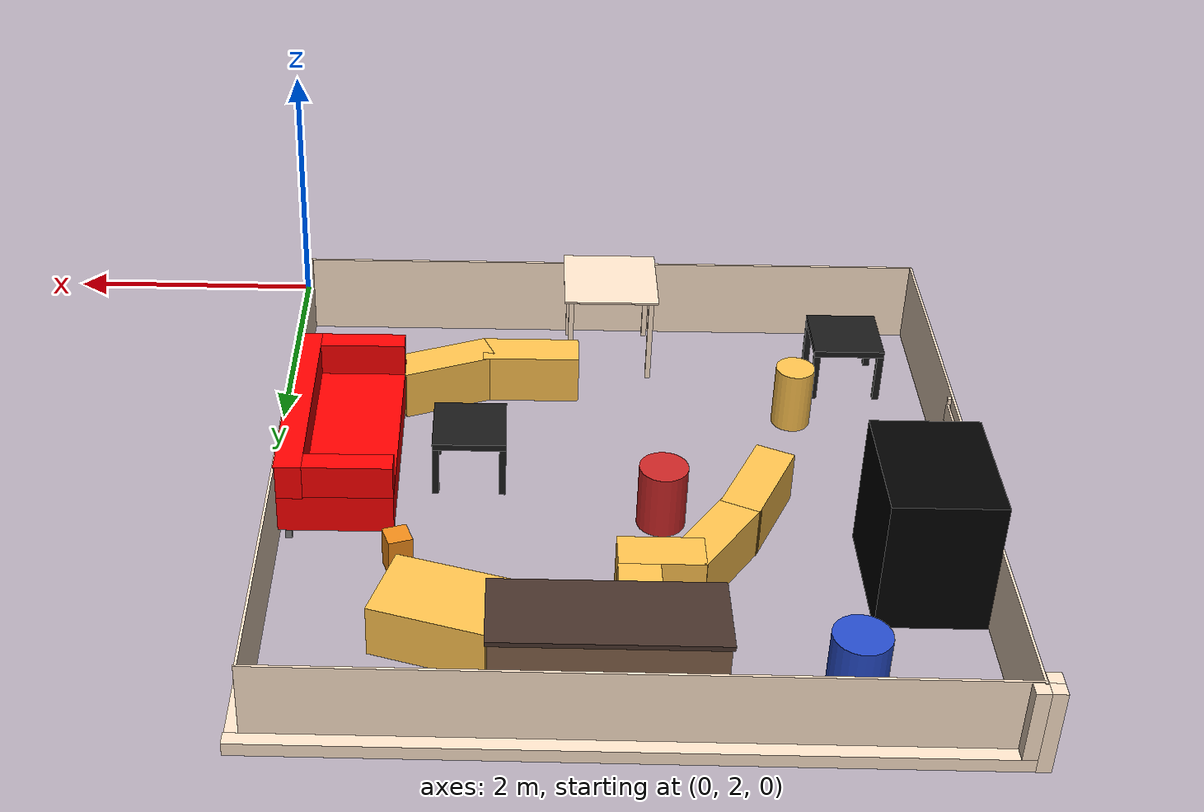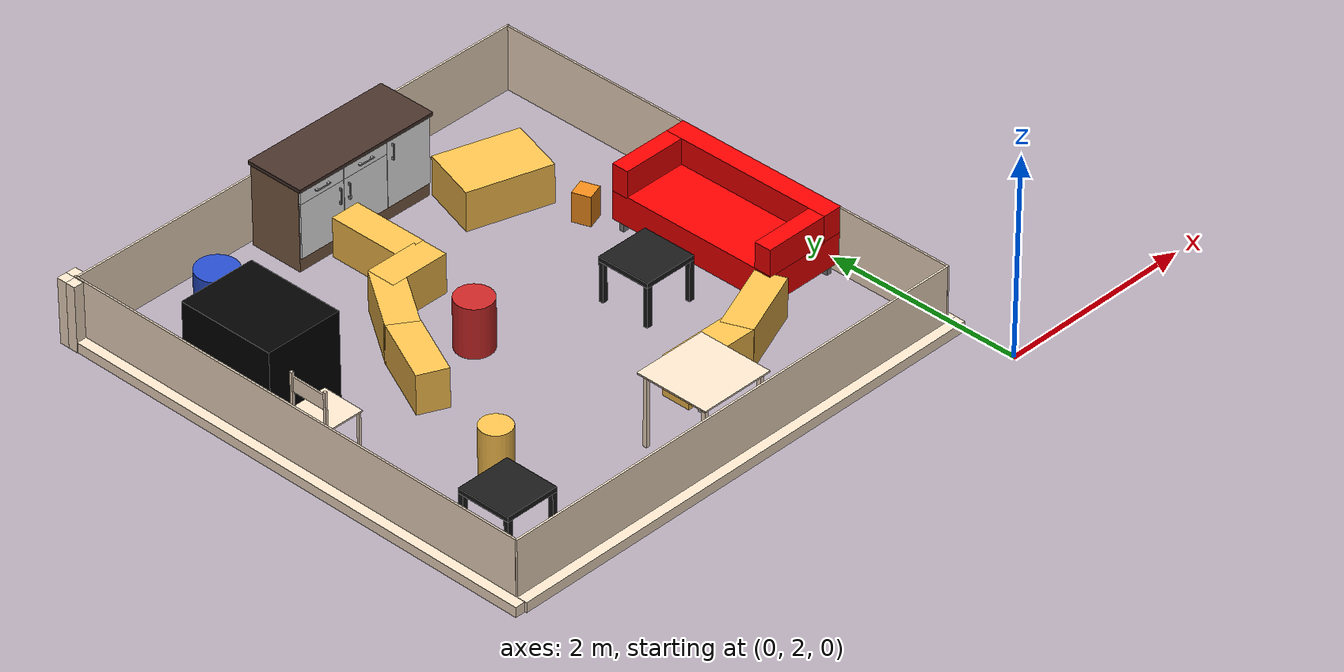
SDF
<sdf version="1.6">
 <model name="amr_arena">
  <link name="dinner-table::1">
   <collision name="dinner-table::1"><geometry><box><size>0.75 0.75 0.015</size></box></geometry></collision>
   <visual name="dinner-table::1">
    <geometry><box><size>0.75 0.75 0.015</size></box></geometry>
    <material><ambient>1 0.9 0.8 1</ambient></material>
   </visual>
   <pose>-2.6 3.02 0.7275 0 -0 1.5708</pose>
  </link>
  <link name="dinner-table::2">
   <collision name="dinner-table::2"><geometry><box><size>0.04 0.04 0.72</size></box></geometry></collision>
   <visual name="dinner-table::2">
    <geometry><box><size>0.04 0.04 0.72</size></box></geometry>
    <material><ambient>1 0.9 0.8 1</ambient></material>
   </visual>
   <pose>-2.28 2.7 0.36 0 -0 1.5708</pose>
  </link>
  <link name="dinner-table::3">
   <collision name="dinner-table::3"><geometry><box><size>0.04 0.04 0.72</size></box></geometry></collision>
   <visual name="dinner-table::3">
    <geometry><box><size>0.04 0.04 0.72</size></box></geometry>
    <material><ambient>1 0.9 0.8 1</ambient></material>
   </visual>
   <pose>-2.28 3.34 0.36 0 -0 1.5708</pose>
  </link>
  <link name="dinner-table::4">
   <collision name="dinner-table::4"><geometry><box><size>0.04 0.04 0.72</size></box></geometry></collision>
   <visual name="dinner-table::4">
    <geometry><box><size>0.04 0.04 0.72</size></box></geometry>
    <material><ambient>1 0.9 0.8 1</ambient></material>
   </visual>
   <pose>-2.92 2.7 0.36 0 -0 1.5708</pose>
  </link>
  <link name="dinner-table::5">
   <collision name="dinner-table::5"><geometry><box><size>0.04 0.04 0.72</size></box></geometry></collision>
   <visual name="dinner-table::5">
    <geometry><box><size>0.04 0.04 0.72</size></box></geometry>
    <material><ambient>1 0.9 0.8 1</ambient></material>
   </visual>
   <pose>-2.92 3.34 0.36 0 -0 1.5708</pose>
  </link>
  <link name="dinner-table::on_top_of"><pose>-2.6 3.02 0 0 -0 1.5708</pose></link>
  <link name="kitchen-counter::1">
   <collision name="kitchen-counter::1"><geometry><box><size>0.555 1.506 0.82</size></box></geometry></collision>
   <visual name="kitchen-counter::1">
    <geometry><box><size>0.555 1.506 0.82</size></box></geometry>
    <material><ambient>0.509 0.38 0.28 1</ambient></material>
   </visual>
   <pose>-2.434 7.3 0.41 0 0 -1.5708</pose>
  </link>
  <link name="kitchen-counter::2">
   <collision name="kitchen-counter::2"><geometry><box><size>0.608 1.54 0.035</size></box></geometry></collision>
   <visual name="kitchen-counter::2">
    <geometry><box><size>0.608 1.54 0.035</size></box></geometry>
    <material><ambient>0.28 0.2 0.17 1</ambient></material>
   </visual>
   <pose>-2.434 7.2865 0.8375 0 0 -1.5708</pose>
  </link>
  <link name="kitchen-counter::3">
   <collision name="kitchen-counter::3">
    <geometry><box><size>0.015 0.495 0.682</size></box></geometry>
   </collision>
   <visual name="kitchen-counter::3">
    <geometry><box><size>0.015 0.495 0.682</size></box></geometry>
    <material><ambient>1 1 1 1</ambient></material>
   </visual>
   <pose>-1.9315 7.015 0.476 0 0 -1.5708</pose>
  </link>
  <link name="kitchen-counter::4">
   <collision name="kitchen-counter::4"><geometry><box><size>0.02 0.01 0.025</size></box></geometry></collision>
   <visual name="kitchen-counter::4">
    <geometry><box><size>0.02 0.01 0.025</size></box></geometry>
    <material><ambient>0.75 0.75 0.75 1</ambient></material>
   </visual>
   <pose>-2.124 6.9975 0.7545 0 0 -1.5708</pose>
  </link>
  <link name="kitchen-counter::5">
   <collision name="kitchen-counter::5"><geometry><box><size>0.02 0.01 0.025</size></box></geometry></collision>
   <visual name="kitchen-counter::5">
    <geometry><box><size>0.02 0.01 0.025</size></box></geometry>
    <material><ambient>0.75 0.75 0.75 1</ambient></material>
   </visual>
   <pose>-2.124 6.9975 0.6175 0 0 -1.5708</pose>
  </link>
  <link name="kitchen-counter::6">
   <collision name="kitchen-counter::6"><geometry><box><size>0.008 0.01 0.162</size></box></geometry></collision>
   <visual name="kitchen-counter::6">
    <geometry><box><size>0.008 0.01 0.162</size></box></geometry>
    <material><ambient>0.75 0.75 0.75 1</ambient></material>
   </visual>
   <pose>-2.124 6.9835 0.686 0 0 -1.5708</pose>
  </link>
  <link name="kitchen-counter::7">
   <collision name="kitchen-counter::7">
    <geometry><box><size>0.015 0.494 0.545</size></box></geometry>
   </collision>
   <visual name="kitchen-counter::7">
    <geometry><box><size>0.015 0.494 0.545</size></box></geometry>
    <material><ambient>1 1 1 1</ambient></material>
   </visual>
   <pose>-2.431 7.015 0.4075 0 0 -1.5708</pose>
  </link>
  <link name="kitchen-counter::8">
   <collision name="kitchen-counter::8"><geometry><box><size>0.02 0.01 0.025</size></box></geometry></collision>
   <visual name="kitchen-counter::8">
    <geometry><box><size>0.02 0.01 0.025</size></box></geometry>
    <material><ambient>0.75 0.75 0.75 1</ambient></material>
   </visual>
   <pose>-2.628 6.9975 0.6175 0 0 -1.5708</pose>
  </link>
  <link name="kitchen-counter::9">
   <collision name="kitchen-counter::9"><geometry><box><size>0.02 0.01 0.025</size></box></geometry></collision>
   <visual name="kitchen-counter::9">
    <geometry><box><size>0.02 0.01 0.025</size></box></geometry>
    <material><ambient>0.75 0.75 0.75 1</ambient></material>
   </visual>
   <pose>-2.628 6.9975 0.4805 0 0 -1.5708</pose>
  </link>
  <link name="kitchen-counter::10">
   <collision name="kitchen-counter::10">
    <geometry><box><size>0.008 0.01 0.162</size></box></geometry>
   </collision>
   <visual name="kitchen-counter::10">
    <geometry><box><size>0.008 0.01 0.162</size></box></geometry>
    <material><ambient>0.75 0.75 0.75 1</ambient></material>
   </visual>
   <pose>-2.628 6.9835 0.549 0 0 -1.5708</pose>
  </link>
  <link name="kitchen-counter::11">
   <collision name="kitchen-counter::11">
    <geometry><box><size>0.015 0.494 0.134</size></box></geometry>
   </collision>
   <visual name="kitchen-counter::11">
    <geometry><box><size>0.015 0.494 0.134</size></box></geometry>
    <material><ambient>1 1 1 1</ambient></material>
   </visual>
   <pose>-2.431 7.015 0.75 0 0 -1.5708</pose>
  </link>
  <link name="kitchen-counter::12">
   <collision name="kitchen-counter::12"><geometry><box><size>0.02 0.025 0.01</size></box></geometry></collision>
   <visual name="kitchen-counter::12">
    <geometry><box><size>0.02 0.025 0.01</size></box></geometry>
    <material><ambient>0.75 0.75 0.75 1</ambient></material>
   </visual>
   <pose>-2.3625 6.9975 0.749 0 0 -1.5708</pose>
  </link>
  <link name="kitchen-counter::13">
   <collision name="kitchen-counter::13"><geometry><box><size>0.02 0.025 0.01</size></box></geometry></collision>
   <visual name="kitchen-counter::13">
    <geometry><box><size>0.02 0.025 0.01</size></box></geometry>
    <material><ambient>0.75 0.75 0.75 1</ambient></material>
   </visual>
   <pose>-2.4995 6.9975 0.749 0 0 -1.5708</pose>
  </link>
  <link name="kitchen-counter::14">
   <collision name="kitchen-counter::14">
    <geometry><box><size>0.008 0.162 0.01</size></box></geometry>
   </collision>
   <visual name="kitchen-counter::14">
    <geometry><box><size>0.008 0.162 0.01</size></box></geometry>
    <material><ambient>0.75 0.75 0.75 1</ambient></material>
   </visual>
   <pose>-2.431 6.9835 0.749 0 0 -1.5708</pose>
  </link>
  <link name="kitchen-counter::15">
   <collision name="kitchen-counter::15">
    <geometry><box><size>0.015 0.494 0.545</size></box></geometry>
   </collision>
   <visual name="kitchen-counter::15">
    <geometry><box><size>0.015 0.494 0.545</size></box></geometry>
    <material><ambient>1 1 1 1</ambient></material>
   </visual>
   <pose>-2.93 7.015 0.4075 0 0 -1.5708</pose>
  </link>
  <link name="kitchen-counter::16">
   <collision name="kitchen-counter::16"><geometry><box><size>0.02 0.01 0.025</size></box></geometry></collision>
   <visual name="kitchen-counter::16">
    <geometry><box><size>0.02 0.01 0.025</size></box></geometry>
    <material><ambient>0.75 0.75 0.75 1</ambient></material>
   </visual>
   <pose>-2.733 6.9975 0.6175 0 0 -1.5708</pose>
  </link>
  <link name="kitchen-counter::17">
   <collision name="kitchen-counter::17"><geometry><box><size>0.02 0.01 0.025</size></box></geometry></collision>
   <visual name="kitchen-counter::17">
    <geometry><box><size>0.02 0.01 0.025</size></box></geometry>
    <material><ambient>0.75 0.75 0.75 1</ambient></material>
   </visual>
   <pose>-2.733 6.9975 0.4805 0 0 -1.5708</pose>
  </link>
  <link name="kitchen-counter::18">
   <collision name="kitchen-counter::18">
    <geometry><box><size>0.008 0.01 0.162</size></box></geometry>
   </collision>
   <visual name="kitchen-counter::18">
    <geometry><box><size>0.008 0.01 0.162</size></box></geometry>
    <material><ambient>0.75 0.75 0.75 1</ambient></material>
   </visual>
   <pose>-2.733 6.9835 0.549 0 0 -1.5708</pose>
  </link>
  <link name="kitchen-counter::19">
   <collision name="kitchen-counter::19">
    <geometry><box><size>0.015 0.494 0.134</size></box></geometry>
   </collision>
   <visual name="kitchen-counter::19">
    <geometry><box><size>0.015 0.494 0.134</size></box></geometry>
    <material><ambient>1 1 1 1</ambient></material>
   </visual>
   <pose>-2.93 7.015 0.75 0 0 -1.5708</pose>
  </link>
  <link name="kitchen-counter::20">
   <collision name="kitchen-counter::20"><geometry><box><size>0.02 0.025 0.01</size></box></geometry></collision>
   <visual name="kitchen-counter::20">
    <geometry><box><size>0.02 0.025 0.01</size></box></geometry>
    <material><ambient>0.75 0.75 0.75 1</ambient></material>
   </visual>
   <pose>-2.8615 6.9975 0.749 0 0 -1.5708</pose>
  </link>
  <link name="kitchen-counter::21">
   <collision name="kitchen-counter::21"><geometry><box><size>0.02 0.025 0.01</size></box></geometry></collision>
   <visual name="kitchen-counter::21">
    <geometry><box><size>0.02 0.025 0.01</size></box></geometry>
    <material><ambient>0.75 0.75 0.75 1</ambient></material>
   </visual>
   <pose>-2.9985 6.9975 0.749 0 0 -1.5708</pose>
  </link>
  <link name="kitchen-counter::22">
   <collision name="kitchen-counter::22">
    <geometry><box><size>0.008 0.162 0.01</size></box></geometry>
   </collision>
   <visual name="kitchen-counter::22">
    <geometry><box><size>0.008 0.162 0.01</size></box></geometry>
    <material><ambient>0.75 0.75 0.75 1</ambient></material>
   </visual>
   <pose>-2.93 6.9835 0.749 0 0 -1.5708</pose>
  </link>
  <link name="kitchen-counter::on_top_of"><pose>-2.434 7.3 0 0 0 -1.5708</pose></link>
  <link name="couch-table::1">
   <collision name="couch-table::1"><geometry><box><size>0.55 0.55 0.05</size></box></geometry></collision>
   <visual name="couch-table::1">
    <geometry><box><size>0.55 0.55 0.05</size></box></geometry>
    <material><ambient>0.1 0.1 0.1 1</ambient></material>
   </visual>
   <pose>-1.5 4.7 0.425 0 -0 -3.13819</pose>
  </link>
  <link name="couch-table::2">
   <collision name="couch-table::2"><geometry><box><size>0.05 0.05 0.4</size></box></geometry></collision>
   <visual name="couch-table::2">
    <geometry><box><size>0.05 0.05 0.4</size></box></geometry>
    <material><ambient>0.1 0.1 0.1 1</ambient></material>
   </visual>
   <pose>-1.25085 4.95085 0.2 0 -0 -3.13819</pose>
  </link>
  <link name="couch-table::3">
   <collision name="couch-table::3"><geometry><box><size>0.05 0.05 0.4</size></box></geometry></collision>
   <visual name="couch-table::3">
    <geometry><box><size>0.05 0.05 0.4</size></box></geometry>
    <material><ambient>0.1 0.1 0.1 1</ambient></material>
   </visual>
   <pose>-1.75085 4.94915 0.2 0 -0 -3.13819</pose>
  </link>
  <link name="couch-table::4">
   <collision name="couch-table::4"><geometry><box><size>0.05 0.05 0.4</size></box></geometry></collision>
   <visual name="couch-table::4">
    <geometry><box><size>0.05 0.05 0.4</size></box></geometry>
    <material><ambient>0.1 0.1 0.1 1</ambient></material>
   </visual>
   <pose>-1.24915 4.45085 0.2 0 -0 -3.13819</pose>
  </link>
  <link name="couch-table::5">
   <collision name="couch-table::5"><geometry><box><size>0.05 0.05 0.4</size></box></geometry></collision>
   <visual name="couch-table::5">
    <geometry><box><size>0.05 0.05 0.4</size></box></geometry>
    <material><ambient>0.1 0.1 0.1 1</ambient></material>
   </visual>
   <pose>-1.74915 4.44915 0.2 0 -0 -3.13819</pose>
  </link>
  <link name="couch-table::on_top_of"><pose>-1.5 4.7 0 0 -0 -3.13819</pose></link>
  <link name="couch-table::in_front_of"><pose>-1.5 4.7 0 0 -0 -3.13819</pose></link>
  <link name="sofa::1">
   <collision name="sofa::1"><geometry><box><size>0.05 0.05 0.11</size></box></geometry></collision>
   <visual name="sofa::1">
    <geometry><box><size>0.05 0.05 0.11</size></box></geometry>
    <material><ambient>0.5 0.5 0.5 1</ambient></material>
   </visual>
   <pose>-0.207779 5.51617 0.055 0 -0 -3.13819</pose>
  </link>
  <link name="sofa::2">
   <collision name="sofa::2"><geometry><box><size>0.05 0.05 0.11</size></box></geometry></collision>
   <visual name="sofa::2">
    <geometry><box><size>0.05 0.05 0.11</size></box></geometry>
    <material><ambient>0.5 0.5 0.5 1</ambient></material>
   </visual>
   <pose>-0.202225 3.88618 0.055 0 -0 -3.13819</pose>
  </link>
  <link name="sofa::3">
   <collision name="sofa::3"><geometry><box><size>0.05 0.05 0.11</size></box></geometry></collision>
   <visual name="sofa::3">
    <geometry><box><size>0.05 0.05 0.11</size></box></geometry>
    <material><ambient>0.5 0.5 0.5 1</ambient></material>
   </visual>
   <pose>-0.912221 3.88376 0.055 0 -0 -3.13819</pose>
  </link>
  <link name="sofa::4">
   <collision name="sofa::4"><geometry><box><size>0.05 0.05 0.11</size></box></geometry></collision>
   <visual name="sofa::4">
    <geometry><box><size>0.05 0.05 0.11</size></box></geometry>
    <material><ambient>0.5 0.5 0.5 1</ambient></material>
   </visual>
   <pose>-0.917775 5.51375 0.055 0 -0 -3.13819</pose>
  </link>
  <link name="sofa::5">
   <collision name="sofa::5"><geometry><box><size>0.85 1.77 0.3</size></box></geometry></collision>
   <visual name="sofa::5">
    <geometry><box><size>0.85 1.77 0.3</size></box></geometry>
    <material><ambient>1 0 0 1</ambient></material>
   </visual>
   <pose>-0.55 4.7 0.26 0 -0 -3.13819</pose>
  </link>
  <link name="sofa::6">
   <collision name="sofa::6"><geometry><box><size>0.2 1.77 0.275</size></box></geometry></collision>
   <visual name="sofa::6">
    <geometry><box><size>0.2 1.77 0.275</size></box></geometry>
    <material><ambient>1 0 0 1</ambient></material>
   </visual>
   <pose>-0.225002 4.70111 0.5325 0 -0 -3.13819</pose>
  </link>
  <link name="sofa::7">
   <collision name="sofa::7"><geometry><box><size>0.65 0.17 0.275</size></box></geometry></collision>
   <visual name="sofa::7">
    <geometry><box><size>0.65 0.17 0.275</size></box></geometry>
    <material><ambient>1 0 0 1</ambient></material>
   </visual>
   <pose>-0.652725 5.49965 0.5325 0 -0 -3.13819</pose>
  </link>
  <link name="sofa::8">
   <collision name="sofa::8"><geometry><box><size>0.65 0.17 0.275</size></box></geometry></collision>
   <visual name="sofa::8">
    <geometry><box><size>0.65 0.17 0.275</size></box></geometry>
    <material><ambient>1 0 0 1</ambient></material>
   </visual>
   <pose>-0.647274 3.89966 0.5325 0 -0 -3.13819</pose>
  </link>
  <link name="sofa::on_top_of"><pose>-0.55 4.7 0 0 -0 -3.13819</pose></link>
  <link name="kitchen-sink::1">
   <collision name="kitchen-sink::1"><geometry><box><size>0.78 1 1.03</size></box></geometry></collision>
   <visual name="kitchen-sink::1">
    <geometry><box><size>0.78 1 1.03</size></box></geometry>
    <material><ambient>0 0 0 1</ambient></material>
   </visual>
   <pose>-4.7 5.9 0.515 0 -0 0</pose>
  </link>
  <link name="kitchen-sink::on_top_of"><pose>-4.7 5.9 0 0 -0 0</pose></link>
  <link name="boundary-right::1">
   <collision name="boundary-right::1"><geometry><box><size>5.1 0.1 0.1</size></box></geometry></collision>
   <visual name="boundary-right::1">
    <geometry><box><size>5.1 0.1 0.1</size></box></geometry>
    <material><ambient>1 0.9 0.8 1</ambient></material>
   </visual>
   <pose>-2.565 2.582 0.05 0 -0 0</pose>
  </link>
  <link name="boundary-right::2">
   <collision name="boundary-right::2"><geometry><box><size>5 0.018 0.655</size></box></geometry></collision>
   <visual name="boundary-right::2">
    <geometry><box><size>5 0.018 0.655</size></box></geometry>
    <material><ambient>1 0.9 0.8 1</ambient></material>
   </visual>
   <pose>-2.615 2.641 0.3325 0 -0 0</pose>
  </link>
  <link name="boundary-left::1">
   <collision name="boundary-left::1"><geometry><box><size>5.1 0.1 0.1</size></box></geometry></collision>
   <visual name="boundary-left::1">
    <geometry><box><size>5.1 0.1 0.1</size></box></geometry>
    <material><ambient>1 0.9 0.8 1</ambient></material>
   </visual>
   <pose>-2.565 7.686 0.05 0 -0 0</pose>
  </link>
  <link name="boundary-left::2">
   <collision name="boundary-left::2"><geometry><box><size>0.1 0.1 0.555</size></box></geometry></collision>
   <visual name="boundary-left::2">
    <geometry><box><size>0.1 0.1 0.555</size></box></geometry>
    <material><ambient>1 0.9 0.8 1</ambient></material>
   </visual>
   <pose>-5.065 7.686 0.3775 0 -0 0</pose>
  </link>
  <link name="boundary-left::3">
   <collision name="boundary-left::3"><geometry><box><size>0.1 0.1 0.655</size></box></geometry></collision>
   <visual name="boundary-left::3">
    <geometry><box><size>0.1 0.1 0.655</size></box></geometry>
    <material><ambient>1 0.9 0.8 1</ambient></material>
   </visual>
   <pose>-5.165 7.686 0.3275 0 -0 0</pose>
  </link>
  <link name="boundary-left::4">
   <collision name="boundary-left::4"><geometry><box><size>0.1 0.1 0.655</size></box></geometry></collision>
   <visual name="boundary-left::4">
    <geometry><box><size>0.1 0.1 0.655</size></box></geometry>
    <material><ambient>1 0.9 0.8 1</ambient></material>
   </visual>
   <pose>-5.165 7.586 0.3275 0 -0 0</pose>
  </link>
  <link name="boundary-left::5">
   <collision name="boundary-left::5"><geometry><box><size>5 0.018 0.655</size></box></geometry></collision>
   <visual name="boundary-left::5">
    <geometry><box><size>5 0.018 0.655</size></box></geometry>
    <material><ambient>1 0.9 0.8 1</ambient></material>
   </visual>
   <pose>-2.615 7.627 0.3325 0 -0 0</pose>
  </link>
  <link name="boundary-front::1">
   <collision name="boundary-front::1"><geometry><box><size>5.1 0.1 0.1</size></box></geometry></collision>
   <visual name="boundary-front::1">
    <geometry><box><size>5.1 0.1 0.1</size></box></geometry>
    <material><ambient>1 0.9 0.8 1</ambient></material>
   </visual>
   <pose>-5.16366 5.10011 0.05 0 0 -1.5725</pose>
  </link>
  <link name="boundary-front::2">
   <collision name="boundary-front::2"><geometry><box><size>5 0.018 0.655</size></box></geometry></collision>
   <visual name="boundary-front::2">
    <geometry><box><size>5 0.018 0.655</size></box></geometry>
    <material><ambient>1 0.9 0.8 1</ambient></material>
   </visual>
   <pose>-5.10457 5.15001 0.3325 0 0 -1.5725</pose>
  </link>
  <link name="boundary-back::1">
   <collision name="boundary-back::1"><geometry><box><size>5.1 0.1 0.1</size></box></geometry></collision>
   <visual name="boundary-back::1">
    <geometry><box><size>5.1 0.1 0.1</size></box></geometry>
    <material><ambient>1 0.9 0.8 1</ambient></material>
   </visual>
   <pose>-0.067656 5.18012 0.05 0 -0 1.5725</pose>
  </link>
  <link name="boundary-back::2">
   <collision name="boundary-back::2"><geometry><box><size>5 0.018 0.655</size></box></geometry></collision>
   <visual name="boundary-back::2">
    <geometry><box><size>5 0.018 0.655</size></box></geometry>
    <material><ambient>1 0.9 0.8 1</ambient></material>
   </visual>
   <pose>-0.12657 5.13002 0.3325 0 -0 1.5725</pose>
  </link>
  <link name="box_0">
   <pose>-1.02 5.85 0.15 0 0 -1.24</pose>
   <collision name="box_0_collision"><geometry><box><size>0.18 0.18 0.3</size></box></geometry></collision>
   <visual name="box_0_visual">
    <geometry><box><size>0.18 0.18 0.3</size></box></geometry>
    <material>
     <script><uri>file://media/materials/scripts/gazebo.material</uri><name>Gazebo/Orange</name></script>
     <ambient>1 0.764706 0.305882 1</ambient>
    </material>
   </visual>
  </link>
  <link name="box_1::box">
   <pose>-1.35 6.6 0.1985 0 0 -0.297</pose>
   <inertial>
    <mass>5</mass>
    <inertia><ixx>0.2157</ixx><iyy>0.3597</iyy><izz>0.444</izz><ixy>0</ixy><ixz>0</ixz><iyz>0</iyz></inertia>
   </inertial>
   <collision name="box_collision"><geometry><box><size>0.84 0.6 0.397</size></box></geometry></collision>
   <visual name="box_visual">
    <geometry><box><size>0.84 0.6 0.397</size></box></geometry>
    <material>
     <script><uri>file://media/materials/scripts/gazebo.material</uri><name>Gazebo/Grey</name></script>
     <ambient>1 0.764706 0.305882 1</ambient>
    </material>
   </visual>
  </link>
  <static>1</static>
  <link name="plant_1">
   <pose>-2.92 5.27 0.25 0 -0 0</pose>
   <collision name="plant_1_collision">
    <geometry><cylinder><radius>0.18</radius><length>0.5</length></cylinder></geometry>
   </collision>
   <visual name="plant_1_visual">
    <geometry><cylinder><radius>0.18</radius><length>0.5</length></cylinder></geometry>
    <material>
     <script><uri>file://media/materials/scripts/gazebo.material</uri><name>Gazebo/Red</name></script>
     <ambient>1 0.764706 0.305882 1</ambient>
    </material>
   </visual>
  </link>
  <link name="box_2::box">
   <pose>-1.28 3.7 0.1985 0 0 -1.19</pose>
   <inertial>
    <mass>7</mass>
    <inertia><ixx>0.3089</ixx><iyy>0.1022</iyy><izz>0.2797</izz><ixy>0</ixy><ixz>0</ixz><iyz>0</iyz></inertia>
   </inertial>
   <collision name="box_collision"><geometry><box><size>0.296 0.764 0.397</size></box></geometry></collision>
   <visual name="box_visual">
    <geometry><box><size>0.296 0.764 0.397</size></box></geometry>
    <material>
     <script><uri>file://media/materials/scripts/gazebo.material</uri><name>Gazebo/Grey</name></script>
     <ambient>1 0.764706 0.305882 1</ambient>
    </material>
   </visual>
  </link>
  <static>1</static>
  <link name="box_3::box">
   <pose>-1.96 3.57 0.1985 0 0 -1.5708</pose>
   <inertial>
    <mass>7</mass>
    <inertia><ixx>0.3089</ixx><iyy>0.1022</iyy><izz>0.2797</izz><ixy>0</ixy><ixz>0</ixz><iyz>0</iyz></inertia>
   </inertial>
   <collision name="box_collision"><geometry><box><size>0.296 0.764 0.397</size></box></geometry></collision>
   <visual name="box_visual">
    <geometry><box><size>0.296 0.764 0.397</size></box></geometry>
    <material>
     <script><uri>file://media/materials/scripts/gazebo.material</uri><name>Gazebo/Grey</name></script>
     <ambient>1 0.764706 0.305882 1</ambient>
    </material>
   </visual>
  </link>
  <static>1</static>
  <link name="vase_1">
   <pose>-4.02 3.94 0.25 0 -0 0</pose>
   <collision name="vase_1_collision">
    <geometry><cylinder><radius>0.15</radius><length>0.5</length></cylinder></geometry>
   </collision>
   <visual name="vase_1_visual">
    <geometry><cylinder><radius>0.15</radius><length>0.5</length></cylinder></geometry>
    <material>
     <script><uri>file://media/materials/scripts/gazebo.material</uri><name>Gazebo/Grey</name></script>
     <ambient>1 0.764706 0.305882 1</ambient>
    </material>
   </visual>
  </link>
  <link name="vase_2">
   <pose>-4.09 7.05 0.25 0 -0 0</pose>
   <collision name="vase_2_collision">
    <geometry><cylinder><radius>0.2</radius><length>0.5</length></cylinder></geometry>
   </collision>
   <visual name="vase_2_visual">
    <geometry><cylinder><radius>0.2</radius><length>0.5</length></cylinder></geometry>
    <material>
     <script><uri>file://media/materials/scripts/gazebo.material</uri><name>Gazebo/Blue</name></script>
     <ambient>1 0.764706 0.305882 1</ambient>
    </material>
   </visual>
  </link>
  <link name="chair::1">
   <pose>-4.62873 5.24886 0.24 0 0 -1.5775</pose>
   <collision name="chair::1"><geometry><box><size>0.025 0.025 0.48</size></box></geometry></collision>
   <visual name="chair::1">
    <geometry><box><size>0.025 0.025 0.48</size></box></geometry>
    <material><ambient>1 0.9 0.8 1</ambient></material>
   </visual>
  </link>
  <link name="chair::2">
   <pose>-4.63128 4.86887 0.24 0 0 -1.5775</pose>
   <collision name="chair::2"><geometry><box><size>0.025 0.025 0.48</size></box></geometry></collision>
   <visual name="chair::2">
    <geometry><box><size>0.025 0.025 0.48</size></box></geometry>
    <material><ambient>1 0.9 0.8 1</ambient></material>
   </visual>
  </link>
  <link name="chair::3">
   <pose>-4.98872 5.25127 0.435 0 0 -1.5775</pose>
   <collision name="chair::3"><geometry><box><size>0.025 0.025 0.87</size></box></geometry></collision>
   <visual name="chair::3">
    <geometry><box><size>0.025 0.025 0.87</size></box></geometry>
    <material><ambient>1 0.9 0.8 1</ambient></material>
   </visual>
  </link>
  <link name="chair::4">
   <pose>-4.99127 4.87128 0.435 0 0 -1.5775</pose>
   <collision name="chair::4"><geometry><box><size>0.025 0.025 0.87</size></box></geometry></collision>
   <visual name="chair::4">
    <geometry><box><size>0.025 0.025 0.87</size></box></geometry>
    <material><ambient>1 0.9 0.8 1</ambient></material>
   </visual>
  </link>
  <link name="chair::5">
   <pose>-4.8 5.06 0.4875 0 0 -1.5775</pose>
   <collision name="chair::5"><geometry><box><size>0.38 0.43 0.015</size></box></geometry></collision>
   <visual name="chair::5">
    <geometry><box><size>0.43 0.38 0.015</size></box></geometry>
    <material><ambient>1 0.9 0.8 1</ambient></material>
   </visual>
  </link>
  <link name="chair::6">
   <pose>-4.98 5.06121 0.75 1.5775 -0 -1.5775</pose>
   <collision name="chair::6"><geometry><box><size>0.39 0.15 0.015</size></box></geometry></collision>
   <visual name="chair::6">
    <geometry><box><size>0.39 0.15 0.015</size></box></geometry>
    <material><ambient>1 0.9 0.8 1</ambient></material>
   </visual>
  </link>
  <link name="couch-table-1::1">
   <collision name="couch-table-1::1"><geometry><box><size>0.55 0.55 0.05</size></box></geometry></collision>
   <visual name="couch-table-1::1">
    <geometry><box><size>0.55 0.55 0.05</size></box></geometry>
    <material><ambient>0.1 0.1 0.1 1</ambient></material>
   </visual>
   <pose>-4.49 3.35 0.425 0 -0 0</pose>
  </link>
  <link name="couch-table-1::2">
   <collision name="couch-table-1::2"><geometry><box><size>0.05 0.05 0.4</size></box></geometry></collision>
   <visual name="couch-table-1::2">
    <geometry><box><size>0.05 0.05 0.4</size></box></geometry>
    <material><ambient>0.1 0.1 0.1 1</ambient></material>
   </visual>
   <pose>-4.74 3.1 0.2 0 -0 0</pose>
  </link>
  <link name="couch-table-1::3">
   <collision name="couch-table-1::3"><geometry><box><size>0.05 0.05 0.4</size></box></geometry></collision>
   <visual name="couch-table-1::3">
    <geometry><box><size>0.05 0.05 0.4</size></box></geometry>
    <material><ambient>0.1 0.1 0.1 1</ambient></material>
   </visual>
   <pose>-4.24 3.1 0.2 0 -0 0</pose>
  </link>
  <link name="couch-table-1::4">
   <collision name="couch-table-1::4"><geometry><box><size>0.05 0.05 0.4</size></box></geometry></collision>
   <visual name="couch-table-1::4">
    <geometry><box><size>0.05 0.05 0.4</size></box></geometry>
    <material><ambient>0.1 0.1 0.1 1</ambient></material>
   </visual>
   <pose>-4.74 3.6 0.2 0 -0 0</pose>
  </link>
  <link name="couch-table-1::5">
   <collision name="couch-table-1::5"><geometry><box><size>0.05 0.05 0.4</size></box></geometry></collision>
   <visual name="couch-table-1::5">
    <geometry><box><size>0.05 0.05 0.4</size></box></geometry>
    <material><ambient>0.1 0.1 0.1 1</ambient></material>
   </visual>
   <pose>-4.24 3.6 0.2 0 -0 0</pose>
  </link>
  <link name="couch-table-1::on_top_of"><pose>-4.49 3.35 0 0 -0 0</pose></link>
  <link name="couch-table-1::in_front_of"><pose>-4.49 3.35 0 0 -0 0</pose></link>
  <link name="box_4::box">
   <pose>-2.7 6.6 0.1985 0 -0 0</pose>
   <inertial>
    <mass>7</mass>
    <inertia><ixx>0.3089</ixx><iyy>0.1022</iyy><izz>0.2797</izz><ixy>0</ixy><ixz>0</ixz><iyz>0</iyz></inertia>
   </inertial>
   <collision name="box_collision"><geometry><box><size>0.296 0.764 0.397</size></box></geometry></collision>
   <visual name="box_visual">
    <geometry><box><size>0.296 0.764 0.397</size></box></geometry>
    <material>
     <script><uri>file://media/materials/scripts/gazebo.material</uri><name>Gazebo/Grey</name></script>
     <ambient>1 0.764706 0.305882 1</ambient>
    </material>
   </visual>
  </link>
  <static>1</static>
  <link name="box_5::box">
   <pose>-2.86 6.1 0.1985 0 -0 0</pose>
   <inertial>
    <mass>5</mass>
    <inertia><ixx>0.1022</ixx><iyy>0.2197</iyy><izz>0.1905</izz><ixy>0</ixy><ixz>0</ixz><iyz>0</iyz></inertia>
   </inertial>
   <collision name="box_collision"><geometry><box><size>0.608 0.296 0.397</size></box></geometry></collision>
   <visual name="box_visual">
    <geometry><box><size>0.608 0.296 0.397</size></box></geometry>
    <material>
     <script><uri>file://media/materials/scripts/gazebo.material</uri><name>Gazebo/Grey</name></script>
     <ambient>1 0.764706 0.305882 1</ambient>
    </material>
   </visual>
  </link>
  <static>1</static>
  <link name="box_6::box">
   <pose>-3.26 5.85 0.1985 0 0 -0.6</pose>
   <inertial>
    <mass>7</mass>
    <inertia><ixx>0.3089</ixx><iyy>0.1022</iyy><izz>0.2797</izz><ixy>0</ixy><ixz>0</ixz><iyz>0</iyz></inertia>
   </inertial>
   <collision name="box_collision"><geometry><box><size>0.296 0.764 0.397</size></box></geometry></collision>
   <visual name="box_visual">
    <geometry><box><size>0.296 0.764 0.397</size></box></geometry>
    <material>
     <script><uri>file://media/materials/scripts/gazebo.material</uri><name>Gazebo/Grey</name></script>
     <ambient>1 0.764706 0.305882 1</ambient>
    </material>
   </visual>
  </link>
  <static>1</static>
  <link name="box_7::box">
   <pose>-3.61 5.24 0.1985 0 0 -0.44</pose>
   <inertial>
    <mass>7</mass>
    <inertia><ixx>0.3089</ixx><iyy>0.1022</iyy><izz>0.2797</izz><ixy>0</ixy><ixz>0</ixz><iyz>0</iyz></inertia>
   </inertial>
   <collision name="box_collision"><geometry><box><size>0.296 0.764 0.397</size></box></geometry></collision>
   <visual name="box_visual">
    <geometry><box><size>0.296 0.764 0.397</size></box></geometry>
    <material>
     <script><uri>file://media/materials/scripts/gazebo.material</uri><name>Gazebo/Grey</name></script>
     <ambient>1 0.764706 0.305882 1</ambient>
    </material>
   </visual>
  </link>
  <static>1</static>
 </model>
</sdf>
